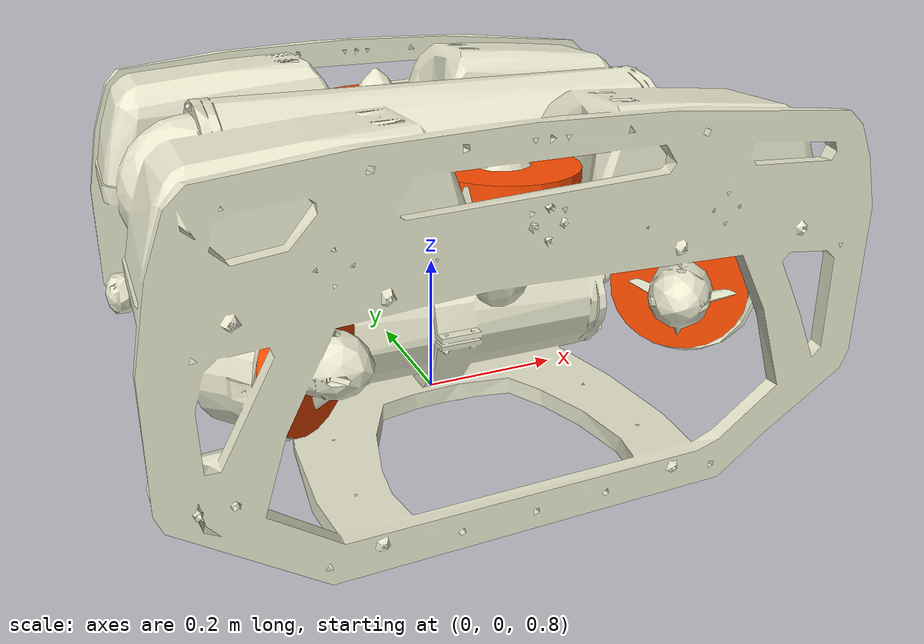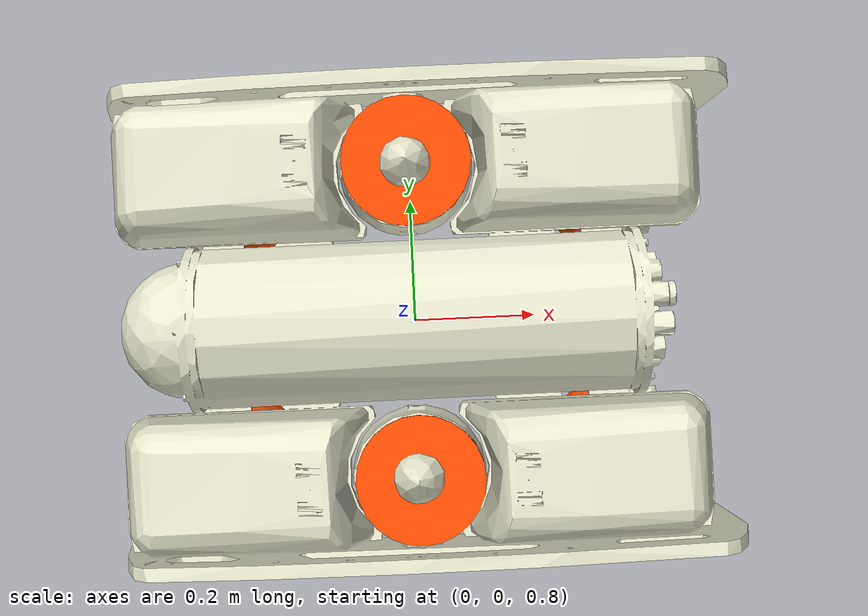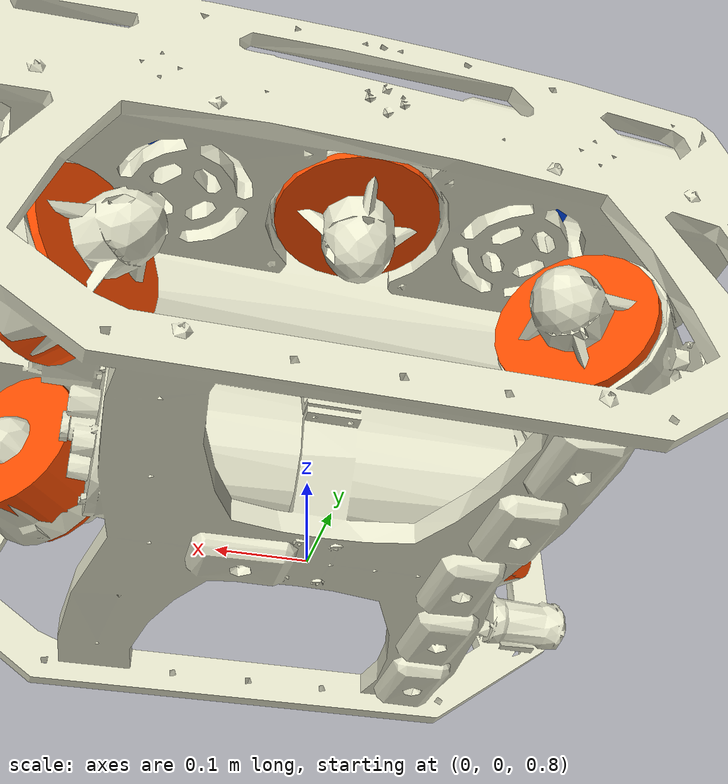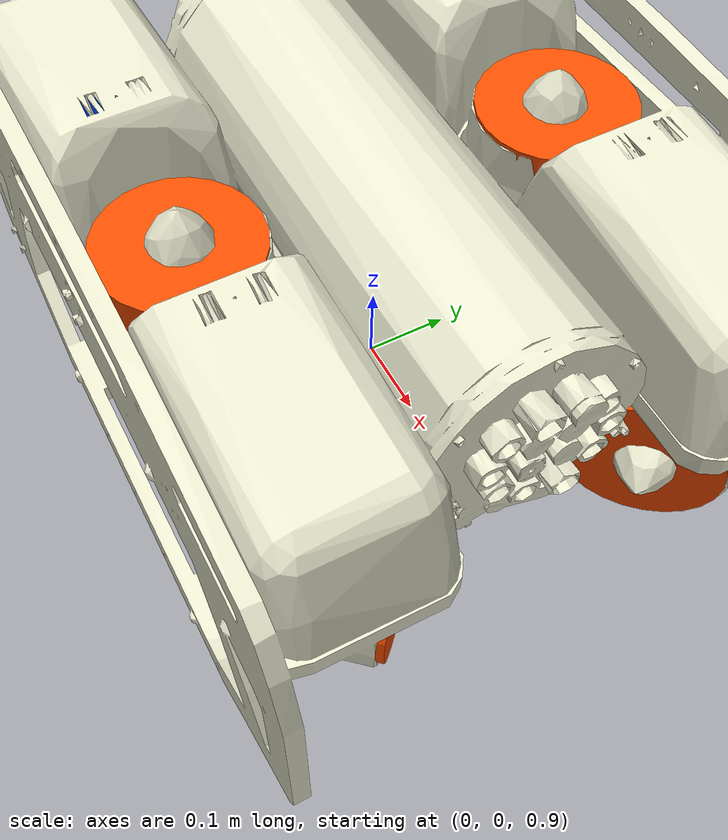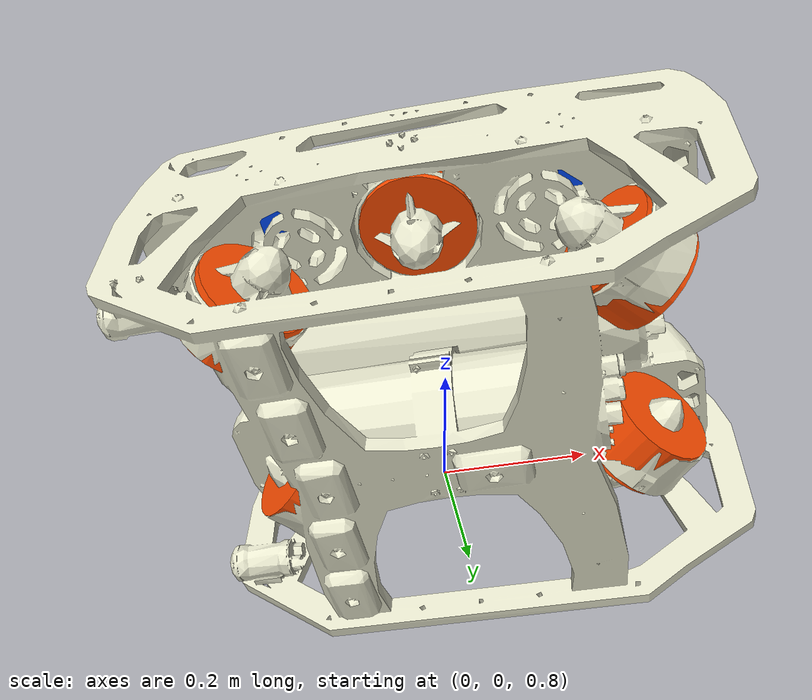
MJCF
<mujoco model="sub">
    <compiler angle="radian"/>

    <asset>
        <mesh name="sub_mesh" scale="0.05 0.05 0.05" file="bluerov2_low_poly.stl" />
        <mesh name="ccw_prop_mesh" file="t200_ccw_prop_low_poly.stl" />
        <mesh name="cw_prop_mesh" file="t200_cw_prop_low_poly.stl" />
        <texture type="skybox" builtin="gradient" rgb1="0.3 0.3 0.3" rgb2="1.0 1.0 1.0" width="512" height="512"/>
    </asset>

  <worldbody>

        <!-- full sub dimensions: 18 in x 13.3 in x 10 in-->
        <body name="sub_body" pos="0 0 1" euler="0 0 0">
            <freejoint/>
            <geom name="sub_geom" type="mesh" euler="1.57 3.14 0" rgba="0.9 0.9 0.8 1" mesh="sub_mesh" size="0.4572 0.33782 0.254" mass="9" />
            <!-- Bouyancy -->
            <body name="bfloat1" pos="-0.24 0.22 0.2">
w               <geom name="gfloat1" type="box" size=" 0.02 0.02 0.02" rgba="0 0.3 1 1" mass="0.0001"/>
                <site name="sfloat1" />
            </body>
            <body name="bfloat2" pos="0.24 0.22 0.2">
                <geom name="gfloat2" type="box" size=" 0.02 0.02 0.02" rgba="0 0.3 1 1" mass="0.0001"/>
                <site name="sfloat2" />
            </body>
            <body name="bfloat3" pos="0.24 -0.22 0.2">
                <geom name="gfloat3" type="box" size=" 0.02 0.02 0.02" rgba="0 0.3 1 1" mass="0.0001"/>
                <site name="sfloat3" />
            </body>
            <body name="bfloat4" pos="-0.24 -0.22 0.2">
                <geom name="gfloat4" type="box" size=" 0.02 0.02 0.02" rgba="0 0.3 1 1" mass="0.0001"/>
                <site name="sfloat4" />
            </body>
            <!-- Thruster -->
            <body name="bt1" euler="1.57 -0.73 0" pos="-0.27 0.19 0">
                <joint name="a1_thruster" type="hinge" axis="0 0 1"/>
                <geom name="thruster1" type="cylinder" size="0.09 0.05" rgba="1 0.3 0 1" mass="0.0001"/>
                <site name="st1" />
            </body>
            <body name="bt2" euler="1.57 3.87 0" pos="-0.27 -0.19 0">
                <joint name="a2_thruster" type="hinge" axis="0 0 1"/>
                <geom name="thruster2" type="cylinder" size="0.09 0.05" rgba="1 0.3 0 1" mass="0.0001"/>
                <site name="st2" />
            </body>
            <body name="bt3" euler="1.57 0.73 0" pos="0.30 0.18 0">
                <joint name="a3_thruster" type="hinge" axis="0 0 1"/>
                <geom name="thruster3" type="cylinder" size="0.09 0.05" rgba="1 0.3 0 1" mass="0.0001"/>
                <site name="st3" />
            </body>
            <body name="bt4" euler="1.57 -3.87 0" pos="0.30 -0.18 0">
                <joint name="a4_thruster" type="hinge" axis="0 0 1"/>
                <geom name="thruster4" type="cylinder" size="0.09 0.05" rgba="1 0.3 0 1" mass="0.0001"/>
                <site name="st4" />
            </body>
            <body name="bt5" euler="0 0 0" pos="0 -0.22 0.15">
                <joint name="a5_thruster" type="hinge" axis="0 0 1"/>
                <geom name="thruster5" type="cylinder" size="0.09 0.05" rgba="1 0.3 0 1" mass="0.0001"/>
                <site name="st5" />
            </body>
            <body name="bt6" euler="0 0 0" pos="0 0.22 0.15">
                <joint name="a6_thruster" type="hinge" axis="0 0 1"/>
                <geom name="thruster6" type="cylinder" size="0.09 0.05" rgba="1 0.3 0 1" mass="0.0001"/>
                <site name="st6" />
            </body>
            <!-- The mass of the weight was chosen to be slightly bigger than the total buoyancy of the balloons. -->
            <site name="imu" pos="0 0 0"/>
        </body>

      <light directional="true" diffuse=".6 .6 .6" pos="0 0 1" dir="0 0 -10"/>
    </worldbody>

    <actuator>
        <velocity name="a1"  joint="a1_thruster" gear=" 0  0  1 0 0 0"/>
        <velocity name="a2"  joint="a2_thruster" gear=" 0  0  1 0 0 0"/>
        <velocity name="a3"  joint="a3_thruster" gear=" 0  0  1 0 0 0"/>
        <velocity name="a4"  joint="a4_thruster" gear=" 0  0  1 0 0 0"/>
        <velocity name="a5"  joint="a5_thruster" gear=" 0  0  1 0 0 0"/>
        <velocity name="a6"  joint="a6_thruster" gear=" 0  0  1 0 0 0"/>
    </actuator>

    <sensor>
        <framequat name="Body_Quat" objtype="site" objname="imu"/>
    </sensor>

</mujoco>
